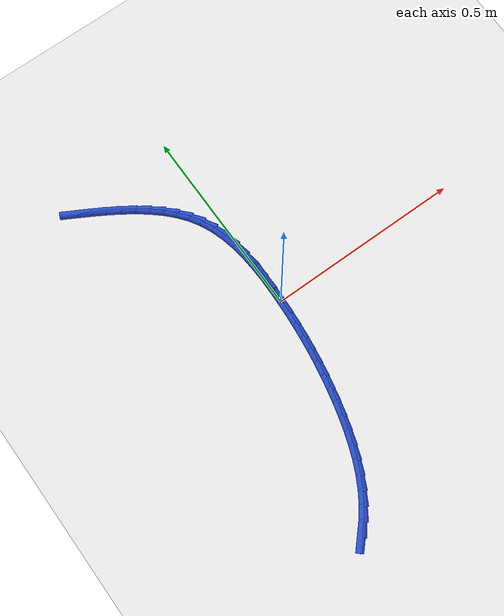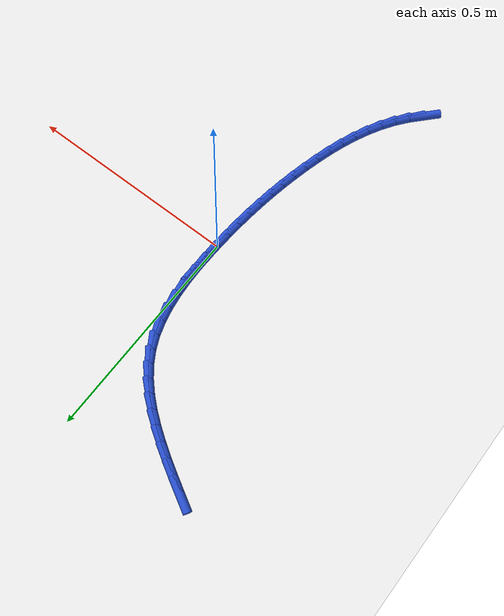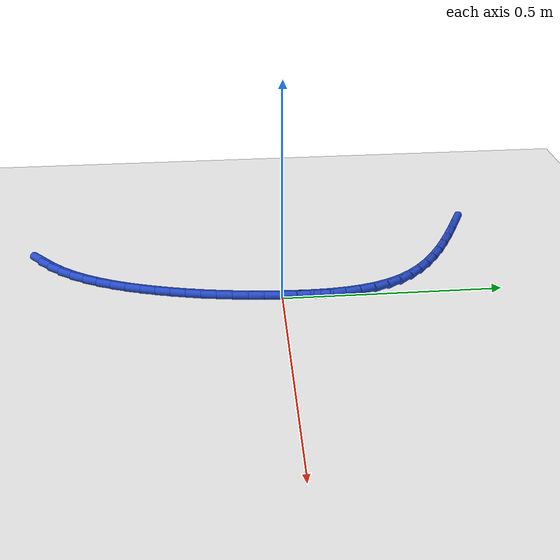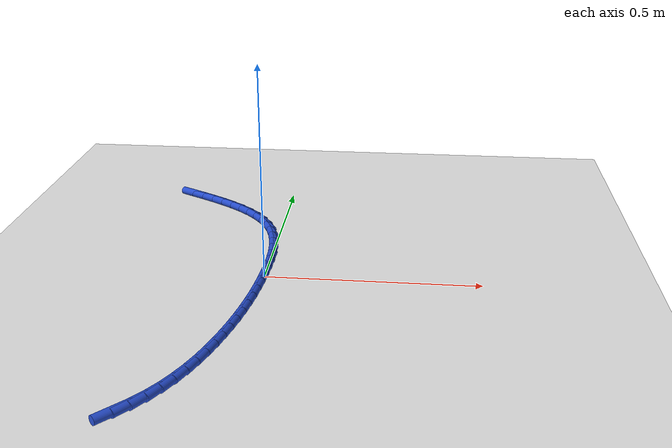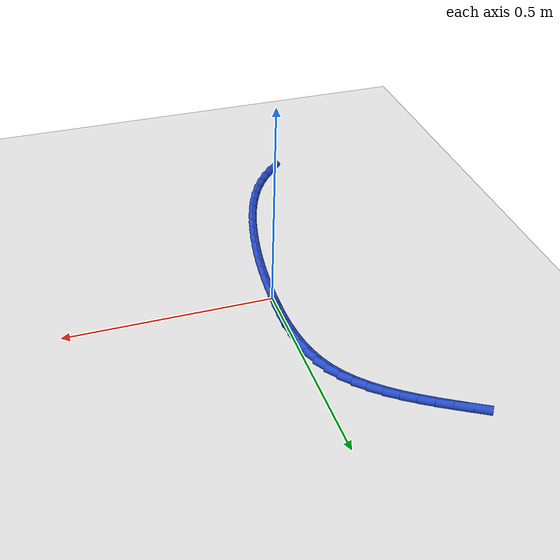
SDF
<sdf version="1.6">
 <world name="default">
  <model name="ground_plane">
   <static>1</static>
   <link name="link">
    <collision name="collision">
     <geometry><plane><normal>0 0 1</normal><size>100 100</size></plane></geometry>
     <surface><friction><ode><mu>100</mu><mu2>50</mu2></ode></friction></surface>
    </collision>
    <visual name="visual">
     <cast_shadows>0</cast_shadows>
     <geometry><plane><normal>0 0 1</normal><size>100 100</size></plane></geometry>
     <material>
      <script><uri>file://media/materials/scripts/gazebo.material</uri><name>Gazebo/WhiteGlow</name></script>
     </material>
    </visual>
   </link>
  </model>
  <model name="line">
   <link name="link_0">
    <pose>-2.4936649967166602e-18 5.551115123125783e-17 0.01 0 1.57 1.535264560343441</pose>
    <collision name="collision">
     <geometry><cylinder><radius>0.01</radius><length>0.08</length></cylinder></geometry>
    </collision>
    <visual name="visual">
     <material>
      <script><name>Gazebo/Blue</name><uri>file://media/materials/scripts/gazebo.material</uri></script>
     </material>
     <geometry><cylinder><radius>0.01</radius><length>0.08</length></cylinder></geometry>
    </visual>
   </link>
   <link name="link_1">
    <pose>0.0012840881396828975 0.03612394858287934 0.01 0 1.57 1.5645498038746073</pose>
    <collision name="collision">
     <geometry><cylinder><radius>0.01</radius><length>0.08</length></cylinder></geometry>
    </collision>
    <visual name="visual">
     <material>
      <script><name>Gazebo/Blue</name><uri>file://media/materials/scripts/gazebo.material</uri></script>
     </material>
     <geometry><cylinder><radius>0.01</radius><length>0.08</length></cylinder></geometry>
    </visual>
   </link>
   <link name="link_2">
    <pose>0.001511256495549066 0.07249064476349956 0.01 0 1.57 -1.537835676432726</pose>
    <collision name="collision">
     <geometry><cylinder><radius>0.01</radius><length>0.08</length></cylinder></geometry>
    </collision>
    <visual name="visual">
     <material>
      <script><name>Gazebo/Blue</name><uri>file://media/materials/scripts/gazebo.material</uri></script>
     </material>
     <geometry><cylinder><radius>0.01</radius><length>0.08</length></cylinder></geometry>
    </visual>
   </link>
   <link name="link_3">
    <pose>0.00031643169811582843 0.1087275534804072 0.01 0 1.57 -1.4875436775994095</pose>
    <collision name="collision">
     <geometry><cylinder><radius>0.01</radius><length>0.08</length></cylinder></geometry>
    </collision>
    <visual name="visual">
     <material>
      <script><name>Gazebo/Blue</name><uri>file://media/materials/scripts/gazebo.material</uri></script>
     </material>
     <geometry><cylinder><radius>0.01</radius><length>0.08</length></cylinder></geometry>
    </visual>
   </link>
   <link name="link_4">
    <pose>-0.0026654596220994893 0.14446213967214855 0.01 0 1.57 -1.4245706592259852</pose>
    <collision name="collision">
     <geometry><cylinder><radius>0.01</radius><length>0.08</length></cylinder></geometry>
    </collision>
    <visual name="visual">
     <material>
      <script><name>Gazebo/Blue</name><uri>file://media/materials/scripts/gazebo.material</uri></script>
     </material>
     <geometry><cylinder><radius>0.01</radius><length>0.08</length></cylinder></geometry>
    </visual>
   </link>
   <link name="link_5">
    <pose>-0.007799490834579564 0.17932186827727012 0.01 0 1.57 -1.3469780910860145</pose>
    <collision name="collision">
     <geometry><cylinder><radius>0.01</radius><length>0.08</length></cylinder></geometry>
    </collision>
    <visual name="visual">
     <material>
      <script><name>Gazebo/Blue</name><uri>file://media/materials/scripts/gazebo.material</uri></script>
     </material>
     <geometry><cylinder><radius>0.01</radius><length>0.08</length></cylinder></geometry>
    </visual>
   </link>
   <link name="link_6">
    <pose>-0.015450735308807074 0.21293420423431814 0.01 0 1.57 -1.2527243977224605</pose>
    <collision name="collision">
     <geometry><cylinder><radius>0.01</radius><length>0.08</length></cylinder></geometry>
    </collision>
    <visual name="visual">
     <material>
      <script><name>Gazebo/Blue</name><uri>file://media/materials/scripts/gazebo.material</uri></script>
     </material>
     <geometry><cylinder><radius>0.01</radius><length>0.08</length></cylinder></geometry>
    </visual>
   </link>
   <link name="link_7">
    <pose>-0.02598426641426469 0.2449266124818391 0.01 0 1.57 -1.1402078588252762</pose>
    <collision name="collision">
     <geometry><cylinder><radius>0.01</radius><length>0.08</length></cylinder></geometry>
    </collision>
    <visual name="visual">
     <material>
      <script><name>Gazebo/Blue</name><uri>file://media/materials/scripts/gazebo.material</uri></script>
     </material>
     <geometry><cylinder><radius>0.01</radius><length>0.08</length></cylinder></geometry>
    </visual>
   </link>
   <link name="link_8">
    <pose>-0.03976450074796819 0.2749271144876108 0.01 0 1.57 -1.0167529269258861</pose>
    <collision name="collision">
     <geometry><cylinder><radius>0.01</radius><length>0.08</length></cylinder></geometry>
    </collision>
    <visual name="visual">
     <material>
      <script><name>Gazebo/Blue</name><uri>file://media/materials/scripts/gazebo.material</uri></script>
     </material>
     <geometry><cylinder><radius>0.01</radius><length>0.08</length></cylinder></geometry>
    </visual>
   </link>
   <link name="link_9">
    <pose>-0.05696358617402109 0.30272665445989344 0.01 0 1.57 -0.902973784058819</pose>
    <collision name="collision">
     <geometry><cylinder><radius>0.01</radius><length>0.08</length></cylinder></geometry>
    </collision>
    <visual name="visual">
     <material>
      <script><name>Gazebo/Blue</name><uri>file://media/materials/scripts/gazebo.material</uri></script>
     </material>
     <geometry><cylinder><radius>0.01</radius><length>0.08</length></cylinder></geometry>
    </visual>
   </link>
   <link name="link_10">
    <pose>-0.07729515361204115 0.3285047100726929 0.01 0 1.57 -0.8041195126919239</pose>
    <collision name="collision">
     <geometry><cylinder><radius>0.01</radius><length>0.08</length></cylinder></geometry>
    </collision>
    <visual name="visual">
     <material>
      <script><name>Gazebo/Blue</name><uri>file://media/materials/scripts/gazebo.material</uri></script>
     </material>
     <geometry><cylinder><radius>0.01</radius><length>0.08</length></cylinder></geometry>
    </visual>
   </link>
   <link name="link_11">
    <pose>-0.10040594108653329 0.35249744202707567 0.01 0 1.57 -0.7210196351180401</pose>
    <collision name="collision">
     <geometry><cylinder><radius>0.01</radius><length>0.08</length></cylinder></geometry>
    </collision>
    <visual name="visual">
     <material>
      <script><name>Gazebo/Blue</name><uri>file://media/materials/scripts/gazebo.material</uri></script>
     </material>
     <geometry><cylinder><radius>0.01</radius><length>0.08</length></cylinder></geometry>
    </visual>
   </link>
   <link name="link_12">
    <pose>-0.12594268662200245 0.37494101102410843 0.01 0 1.57 -0.6532456504707997</pose>
    <collision name="collision">
     <geometry><cylinder><radius>0.01</radius><length>0.08</length></cylinder></geometry>
    </collision>
    <visual name="visual">
     <material>
      <script><name>Gazebo/Blue</name><uri>file://media/materials/scripts/gazebo.material</uri></script>
     </material>
     <geometry><cylinder><radius>0.01</radius><length>0.08</length></cylinder></geometry>
    </visual>
   </link>
   <link name="link_13">
    <pose>-0.15355212824295347 0.3960715777648578 0.01 0 1.57 -0.5997389390181905</pose>
    <collision name="collision">
     <geometry><cylinder><radius>0.01</radius><length>0.08</length></cylinder></geometry>
    </collision>
    <visual name="visual">
     <material>
      <script><name>Gazebo/Blue</name><uri>file://media/materials/scripts/gazebo.material</uri></script>
     </material>
     <geometry><cylinder><radius>0.01</radius><length>0.08</length></cylinder></geometry>
    </visual>
   </link>
   <link name="link_14">
    <pose>-0.18288100397389134 0.4161253029503904 0.01 0 1.57 -0.5592699772801594</pose>
    <collision name="collision">
     <geometry><cylinder><radius>0.01</radius><length>0.08</length></cylinder></geometry>
    </collision>
    <visual name="visual">
     <material>
      <script><name>Gazebo/Blue</name><uri>file://media/materials/scripts/gazebo.material</uri></script>
     </material>
     <geometry><cylinder><radius>0.01</radius><length>0.08</length></cylinder></geometry>
    </visual>
   </link>
   <link name="link_15">
    <pose>-0.21357605183932088 0.4353383472817726 0.01 0 1.57 -0.5307108991946913</pose>
    <collision name="collision">
     <geometry><cylinder><radius>0.01</radius><length>0.08</length></cylinder></geometry>
    </collision>
    <visual name="visual">
     <material>
      <script><name>Gazebo/Blue</name><uri>file://media/materials/scripts/gazebo.material</uri></script>
     </material>
     <geometry><cylinder><radius>0.01</radius><length>0.08</length></cylinder></geometry>
    </visual>
   </link>
   <link name="link_16">
    <pose>-0.2452840098637471 0.45394687146007123 0.01 0 1.57 -0.513172665324931</pose>
    <collision name="collision">
     <geometry><cylinder><radius>0.01</radius><length>0.08</length></cylinder></geometry>
    </collision>
    <visual name="visual">
     <material>
      <script><name>Gazebo/Blue</name><uri>file://media/materials/scripts/gazebo.material</uri></script>
     </material>
     <geometry><cylinder><radius>0.01</radius><length>0.08</length></cylinder></geometry>
    </visual>
   </link>
   <link name="link_17">
    <pose>-0.2776516160716749 0.4721870361863528 0.01 0 1.57 -0.5060629812694932</pose>
    <collision name="collision">
     <geometry><cylinder><radius>0.01</radius><length>0.08</length></cylinder></geometry>
    </collision>
    <visual name="visual">
     <material>
      <script><name>Gazebo/Blue</name><uri>file://media/materials/scripts/gazebo.material</uri></script>
     </material>
     <geometry><cylinder><radius>0.01</radius><length>0.08</length></cylinder></geometry>
    </visual>
   </link>
   <link name="link_213">
    <pose>-0.17691736360613225 -0.5543322003826185 0.01 0 1.57 0.8222521108375361</pose>
    <collision name="collision">
     <geometry><cylinder><radius>0.01</radius><length>0.08</length></cylinder></geometry>
    </collision>
    <visual name="visual">
     <material>
      <script><name>Gazebo/Blue</name><uri>file://media/materials/scripts/gazebo.material</uri></script>
     </material>
     <geometry><cylinder><radius>0.01</radius><length>0.08</length></cylinder></geometry>
    </visual>
   </link>
   <link name="link_214">
    <pose>-0.15335391364637818 -0.5289646323927374 0.01 0 1.57 0.9080929849831234</pose>
    <collision name="collision">
     <geometry><cylinder><radius>0.01</radius><length>0.08</length></cylinder></geometry>
    </collision>
    <visual name="visual">
     <material>
      <script><name>Gazebo/Blue</name><uri>file://media/materials/scripts/gazebo.material</uri></script>
     </material>
     <geometry><cylinder><radius>0.01</radius><length>0.08</length></cylinder></geometry>
    </visual>
   </link>
   <link name="link_215">
    <pose>-0.1321078804807109 -0.5017416838165083 0.01 0 1.57 0.9940499774436119</pose>
    <collision name="collision">
     <geometry><cylinder><radius>0.01</radius><length>0.08</length></cylinder></geometry>
    </collision>
    <visual name="visual">
     <material>
      <script><name>Gazebo/Blue</name><uri>file://media/materials/scripts/gazebo.material</uri></script>
     </material>
     <geometry><cylinder><radius>0.01</radius><length>0.08</length></cylinder></geometry>
    </visual>
   </link>
   <link name="link_216">
    <pose>-0.11322058280809875 -0.47270788974985173 0.01 0 1.57 1.0703422644182181</pose>
    <collision name="collision">
     <geometry><cylinder><radius>0.01</radius><length>0.08</length></cylinder></geometry>
    </collision>
    <visual name="visual">
     <material>
      <script><name>Gazebo/Blue</name><uri>file://media/materials/scripts/gazebo.material</uri></script>
     </material>
     <geometry><cylinder><radius>0.01</radius><length>0.08</length></cylinder></geometry>
    </visual>
   </link>
   <link name="link_217">
    <pose>-0.09650018696351834 -0.4421344138749697 0.01 0 1.57 1.1369532413262267</pose>
    <collision name="collision">
     <geometry><cylinder><radius>0.01</radius><length>0.08</length></cylinder></geometry>
    </collision>
    <visual name="visual">
     <material>
      <script><name>Gazebo/Blue</name><uri>file://media/materials/scripts/gazebo.material</uri></script>
     </material>
     <geometry><cylinder><radius>0.01</radius><length>0.08</length></cylinder></geometry>
    </visual>
   </link>
   <link name="link_218">
    <pose>-0.08175041009358724 -0.41029674457080334 0.01 0 1.57 1.1943699656175644</pose>
    <collision name="collision">
     <geometry><cylinder><radius>0.01</radius><length>0.08</length></cylinder></geometry>
    </collision>
    <visual name="visual">
     <material>
      <script><name>Gazebo/Blue</name><uri>file://media/materials/scripts/gazebo.material</uri></script>
     </material>
     <geometry><cylinder><radius>0.01</radius><length>0.08</length></cylinder></geometry>
    </visual>
   </link>
   <link name="link_219">
    <pose>-0.06877496934492261 -0.3774703702162926 0.01 0 1.57 1.2432201483913516</pose>
    <collision name="collision">
     <geometry><cylinder><radius>0.01</radius><length>0.08</length></cylinder></geometry>
    </collision>
    <visual name="visual">
     <material>
      <script><name>Gazebo/Blue</name><uri>file://media/materials/scripts/gazebo.material</uri></script>
     </material>
     <geometry><cylinder><radius>0.01</radius><length>0.08</length></cylinder></geometry>
    </visual>
   </link>
   <link name="link_220">
    <pose>-0.05737758186414267 -0.34393077919038034 0.01 0 1.57 1.2841412559430205</pose>
    <collision name="collision">
     <geometry><cylinder><radius>0.01</radius><length>0.08</length></cylinder></geometry>
    </collision>
    <visual name="visual">
     <material>
      <script><name>Gazebo/Blue</name><uri>file://media/materials/scripts/gazebo.material</uri></script>
     </material>
     <geometry><cylinder><radius>0.01</radius><length>0.08</length></cylinder></geometry>
    </visual>
   </link>
   <link name="link_221">
    <pose>-0.04736196479786457 -0.3099534598720065 0.01 0 1.57 1.3176950549225601</pose>
    <collision name="collision">
     <geometry><cylinder><radius>0.01</radius><length>0.08</length></cylinder></geometry>
    </collision>
    <visual name="visual">
     <material>
      <script><name>Gazebo/Blue</name><uri>file://media/materials/scripts/gazebo.material</uri></script>
     </material>
     <geometry><cylinder><radius>0.01</radius><length>0.08</length></cylinder></geometry>
    </visual>
   </link>
   <link name="link_222">
    <pose>-0.038531835292705804 -0.2758139006401121 0.01 0 1.57 1.3449595408602604</pose>
    <collision name="collision">
     <geometry><cylinder><radius>0.01</radius><length>0.08</length></cylinder></geometry>
    </collision>
    <visual name="visual">
     <material>
      <script><name>Gazebo/Blue</name><uri>file://media/materials/scripts/gazebo.material</uri></script>
     </material>
     <geometry><cylinder><radius>0.01</radius><length>0.08</length></cylinder></geometry>
    </visual>
   </link>
   <link name="link_223">
    <pose>-0.03070606145076453 -0.2417526860463831 0.01 0 1.57 1.3705051991753785</pose>
    <collision name="collision">
     <geometry><cylinder><radius>0.01</radius><length>0.08</length></cylinder></geometry>
    </collision>
    <visual name="visual">
     <material>
      <script><name>Gazebo/Blue</name><uri>file://media/materials/scripts/gazebo.material</uri></script>
     </material>
     <geometry><cylinder><radius>0.01</radius><length>0.08</length></cylinder></geometry>
    </visual>
   </link>
   <link name="link_224">
    <pose>-0.023807363506736918 -0.2077711525699515 0.01 0 1.57 1.395975651287496</pose>
    <collision name="collision">
     <geometry><cylinder><radius>0.01</radius><length>0.08</length></cylinder></geometry>
    </collision>
    <visual name="visual">
     <material>
      <script><name>Gazebo/Blue</name><uri>file://media/materials/scripts/gazebo.material</uri></script>
     </material>
     <geometry><cylinder><radius>0.01</radius><length>0.08</length></cylinder></geometry>
    </visual>
   </link>
   <link name="link_225">
    <pose>-0.017802009743400307 -0.17377031341004345 0.01 0 1.57 1.4211133053670588</pose>
    <collision name="collision">
     <geometry><cylinder><radius>0.01</radius><length>0.08</length></cylinder></geometry>
    </collision>
    <visual name="visual">
     <material>
      <script><name>Gazebo/Blue</name><uri>file://media/materials/scripts/gazebo.material</uri></script>
     </material>
     <geometry><cylinder><radius>0.01</radius><length>0.08</length></cylinder></geometry>
    </visual>
   </link>
   <link name="link_226">
    <pose>-0.012656417199695211 -0.13965083907070594 0.01 0 1.57 1.4456604704447056</pose>
    <collision name="collision">
     <geometry><cylinder><radius>0.01</radius><length>0.08</length></cylinder></geometry>
    </collision>
    <visual name="visual">
     <material>
      <script><name>Gazebo/Blue</name><uri>file://media/materials/scripts/gazebo.material</uri></script>
     </material>
     <geometry><cylinder><radius>0.01</radius><length>0.08</length></cylinder></geometry>
    </visual>
   </link>
   <link name="link_227">
    <pose>-0.008337002914562125 -0.10531340005598598 0.01 0 1.57 1.4693753139516887</pose>
    <collision name="collision">
     <geometry><cylinder><radius>0.01</radius><length>0.08</length></cylinder></geometry>
    </collision>
    <visual name="visual">
     <material>
      <script><name>Gazebo/Blue</name><uri>file://media/materials/scripts/gazebo.material</uri></script>
     </material>
     <geometry><cylinder><radius>0.01</radius><length>0.08</length></cylinder></geometry>
    </visual>
   </link>
   <link name="link_228">
    <pose>-0.004810183926941482 -0.07065866686992961 0.01 0 1.57 1.4920402684140044</pose>
    <collision name="collision">
     <geometry><cylinder><radius>0.01</radius><length>0.08</length></cylinder></geometry>
    </collision>
    <visual name="visual">
     <material>
      <script><name>Gazebo/Blue</name><uri>file://media/materials/scripts/gazebo.material</uri></script>
     </material>
     <geometry><cylinder><radius>0.01</radius><length>0.08</length></cylinder></geometry>
    </visual>
   </link>
   <link name="link_229">
    <pose>-0.0020423772757739754 -0.035587310016585584 0.01 0 1.57 1.5134686056997178</pose>
    <collision name="collision">
     <geometry><cylinder><radius>0.01</radius><length>0.08</length></cylinder></geometry>
    </collision>
    <visual name="visual">
     <material>
      <script><name>Gazebo/Blue</name><uri>file://media/materials/scripts/gazebo.material</uri></script>
     </material>
     <geometry><cylinder><radius>0.01</radius><length>0.08</length></cylinder></geometry>
    </visual>
   </link>
   <link name="link_230">
    <pose>-5.637851296924623e-18 -6.938893903907228e-18 0.01 0 1.57 1.5335088068688385</pose>
    <collision name="collision">
     <geometry><cylinder><radius>0.01</radius><length>0.08</length></cylinder></geometry>
    </collision>
    <visual name="visual">
     <material>
      <script><name>Gazebo/Blue</name><uri>file://media/materials/scripts/gazebo.material</uri></script>
     </material>
     <geometry><cylinder><radius>0.01</radius><length>0.08</length></cylinder></geometry>
    </visual>
   </link>
   <link name="link_231">
    <pose>0.001350530861439918 0.03620259267578017 0.01 0 1.57 1.552046633068151</pose>
    <collision name="collision">
     <geometry><cylinder><radius>0.01</radius><length>0.08</length></cylinder></geometry>
    </collision>
    <visual name="visual">
     <material>
      <script><name>Gazebo/Blue</name><uri>file://media/materials/scripts/gazebo.material</uri></script>
     </material>
     <geometry><cylinder><radius>0.01</radius><length>0.08</length></cylinder></geometry>
    </visual>
   </link>
   <link name="link_232">
    <pose>0.0020427982696052853 0.07311979750670791 0.01 0 1.57 1.5428659015191433</pose>
    <collision name="collision">
     <geometry><cylinder><radius>0.01</radius><length>0.08</length></cylinder></geometry>
    </collision>
    <visual name="visual">
     <material>
      <script><name>Gazebo/Blue</name><uri>file://media/materials/scripts/gazebo.material</uri></script>
     </material>
     <geometry><cylinder><radius>0.01</radius><length>0.08</length></cylinder></geometry>
    </visual>
   </link>
  </model>
 </world>
</sdf>
